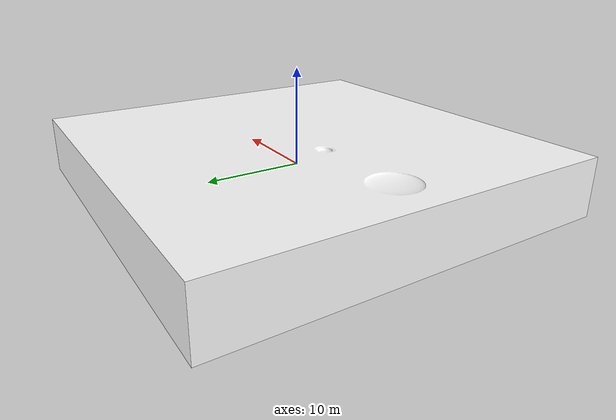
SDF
<?xml version='1.0'?>
<sdf version='1.6'>
  <model name="won4">
    <static>true</static>
    <link name="link">
      <collision name="collision">
        <geometry>
          <mesh>
            <uri>model://won4/meshes/won4.dae</uri>
            <scale>1 1 1</scale>
          </mesh>
        </geometry>
      </collision>
      <visual name="visual">
        <geometry>
          <mesh>
            <uri>model://won4/meshes/won4.dae</uri>
            <scale>1 1 1</scale>
          </mesh>
        </geometry>
        <material>
          <ambient>1 1 1 1</ambient> <!-- White color -->
          <diffuse>1 1 1 1</diffuse> <!-- White color -->
          <specular>0.5 0.5 0.5 1</specular> <!-- Neutral specular reflection -->
        </material>
      </visual>
    </link>
  </model>
</sdf>
